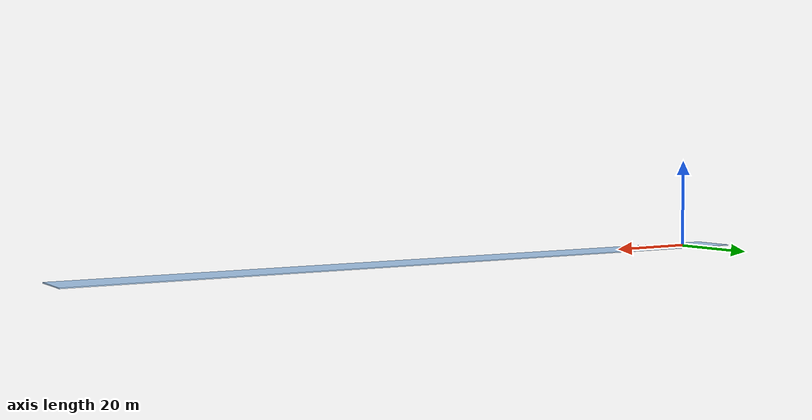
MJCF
<mujoco model="Ice World">
  <compiler angle="degree" coordinate="local" inertiafromgeom="true" autolimits="true"/>
  <option integrator="RK4" timestep="0.01" gravity="0 0 -9.81"/>

  <visual>
    <headlight diffuse="0.8 0.8 0.9" ambient="0.1 0.1 0.1" specular="0.9 0.9 0.9"/>
    <rgba force="1 0 0 1"/>
    <global azimuth="140" elevation="-20"/>
    <quality shadowsize="8192"/>
  </visual>

  <asset>
    <texture type="skybox" builtin="gradient" rgb1="0.3 0.5 0.7" rgb2="0 0 0"
             width="512" height="3072"/>
    <texture type="2d" name="groundplane" builtin="checker" mark="edge"
             rgb1="0.6 0.7 0.9" rgb2="0.7 0.8 1.0" markrgb="0.9 0.9 1.0"
             width="300" height="300"/>
    <material name="groundplane" texture="groundplane" texuniform="true"
              texrepeat="5 5" reflectance="0.7"/>
  </asset>

  <worldbody>
    <light pos="0 0 20" dir="0 0 -1" directional="true"/>
    <geom conaffinity="1" condim="3" material="groundplane" name="floor"
          pos="70 0 0" size="80 5 0.1" type="box"
          friction="0.2 0.05 0.05" rgba="0.7 0.85 1.0 1"/>
  </worldbody>
</mujoco>
